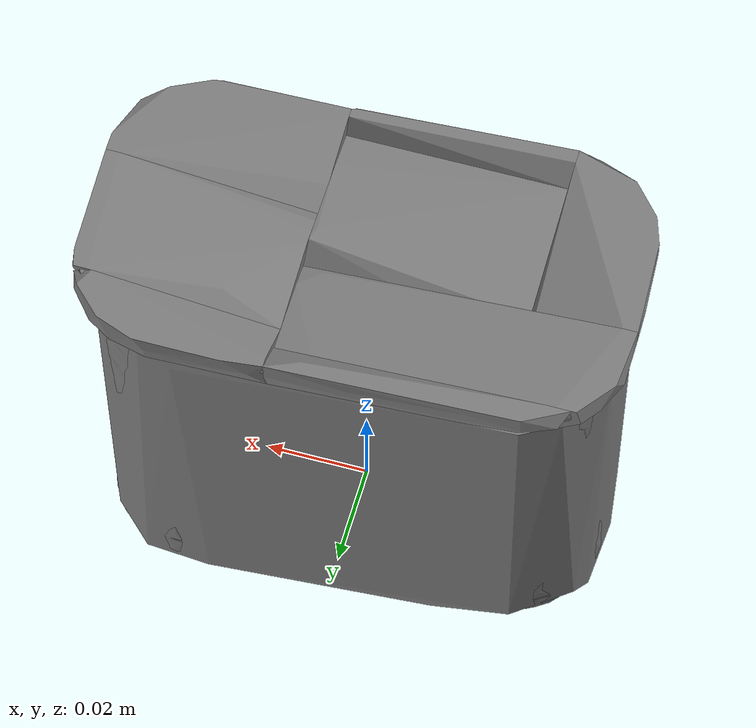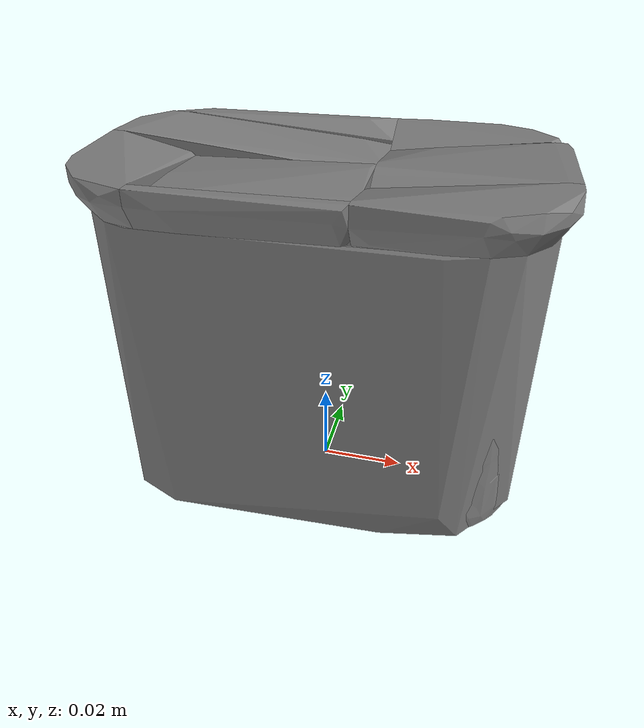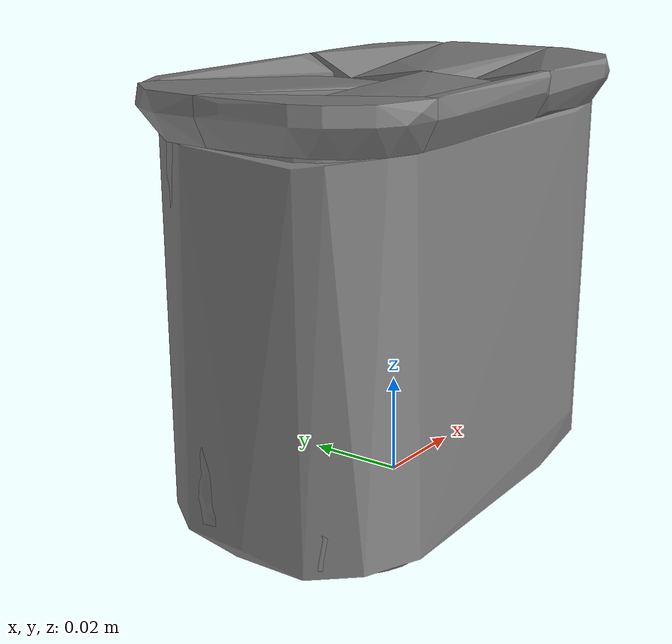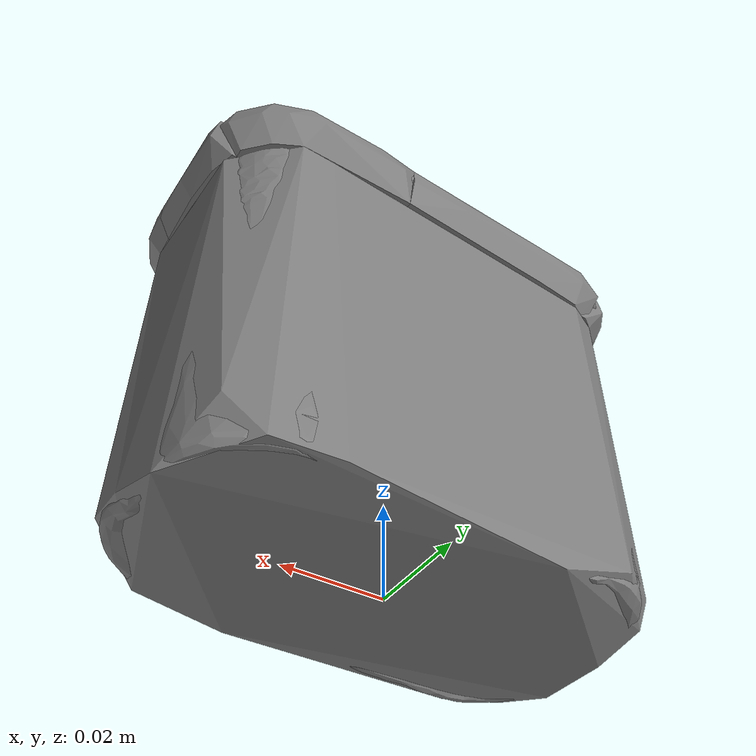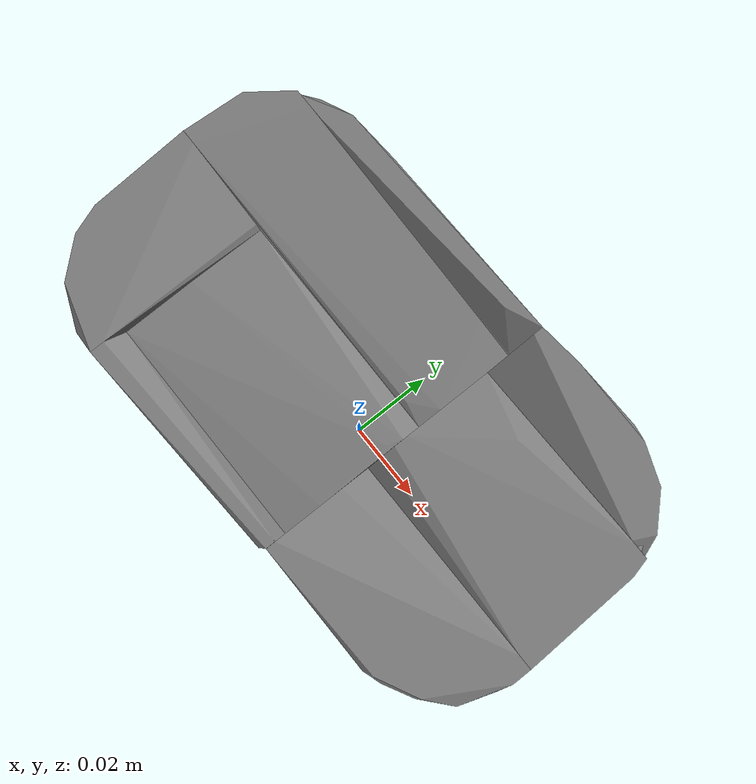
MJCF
<mujoco model="potted_meat_can">
  <asset>
    <mesh file="../../meshes/ycb/potted_meat_can/simple_mesh.stl" name="potted_meat_can_mesh" scale="1 1 1"/>
    <mesh file="../../meshes/ycb/potted_meat_can/potted_meat_can_hull_1.stl" name="potted_meat_can_hull_mesh_1" scale="1 1 1"/>
    <mesh file="../../meshes/ycb/potted_meat_can/potted_meat_can_hull_2.stl" name="potted_meat_can_hull_mesh_2" scale="1 1 1"/>
    <mesh file="../../meshes/ycb/potted_meat_can/potted_meat_can_hull_3.stl" name="potted_meat_can_hull_mesh_3" scale="1 1 1"/>
    <mesh file="../../meshes/ycb/potted_meat_can/potted_meat_can_hull_4.stl" name="potted_meat_can_hull_mesh_4" scale="1 1 1"/>
    <mesh file="../../meshes/ycb/potted_meat_can/potted_meat_can_hull_5.stl" name="potted_meat_can_hull_mesh_5" scale="1 1 1"/>
    <mesh file="../../meshes/ycb/potted_meat_can/potted_meat_can_hull_6.stl" name="potted_meat_can_hull_mesh_6" scale="1 1 1"/>
    <mesh file="../../meshes/ycb/potted_meat_can/potted_meat_can_hull_7.stl" name="potted_meat_can_hull_mesh_7" scale="1 1 1"/>
    <mesh file="../../meshes/ycb/potted_meat_can/potted_meat_can_hull_8.stl" name="potted_meat_can_hull_mesh_8" scale="1 1 1"/>
    <mesh file="../../meshes/ycb/potted_meat_can/potted_meat_can_hull_9.stl" name="potted_meat_can_hull_mesh_9" scale="1 1 1"/>
  </asset>
  <worldbody>
    <body>
      <body name="object">
        <geom pos="0 0 0" mesh="potted_meat_can_mesh" type="mesh" contype="0" conaffinity="0" group="1"/>
        <geom pos="0 0 0" mesh="potted_meat_can_hull_mesh_1" type="mesh" margin="0.001" solimp="0.998 0.998 0.001" solref="0.001 1" density="350" friction="0.95 0.3 0.1" group="0" condim="4"/>
        <geom pos="0 0 0" mesh="potted_meat_can_hull_mesh_2" type="mesh" margin="0.001" solimp="0.998 0.998 0.001" solref="0.001 1" density="350" friction="0.95 0.3 0.1" group="0" condim="4"/>
        <geom pos="0 0 0" mesh="potted_meat_can_hull_mesh_3" type="mesh" margin="0.001" solimp="0.998 0.998 0.001" solref="0.001 1" density="350" friction="0.95 0.3 0.1" group="0" condim="4"/>
        <geom pos="0 0 0" mesh="potted_meat_can_hull_mesh_4" type="mesh" margin="0.001" solimp="0.998 0.998 0.001" solref="0.001 1" density="350" friction="0.95 0.3 0.1" group="0" condim="4"/>
        <geom pos="0 0 0" mesh="potted_meat_can_hull_mesh_5" type="mesh" margin="0.001" solimp="0.998 0.998 0.001" solref="0.001 1" density="350" friction="0.95 0.3 0.1" group="0" condim="4"/>
        <geom pos="0 0 0" mesh="potted_meat_can_hull_mesh_6" type="mesh" margin="0.001" solimp="0.998 0.998 0.001" solref="0.001 1" density="350" friction="0.95 0.3 0.1" group="0" condim="4"/>
        <geom pos="0 0 0" mesh="potted_meat_can_hull_mesh_7" type="mesh" margin="0.001" solimp="0.998 0.998 0.001" solref="0.001 1" density="350" friction="0.95 0.3 0.1" group="0" condim="4"/>
        <geom pos="0 0 0" mesh="potted_meat_can_hull_mesh_8" type="mesh" margin="0.001" solimp="0.998 0.998 0.001" solref="0.001 1" density="350" friction="0.95 0.3 0.1" group="0" condim="4"/>
        <geom pos="0 0 0" mesh="potted_meat_can_hull_mesh_9" type="mesh" margin="0.001" solimp="0.998 0.998 0.001" solref="0.001 1" density="350" friction="0.95 0.3 0.1" group="0" condim="4"/>
      </body>
      <site rgba="0 0 0 0" size="0.005" pos="0 0 -0.001" name="bottom_site"/>
      <site rgba="0 0 0 0" size="0.005" pos="0 0 0.02" name="top_site"/>
      <site rgba="0 0 0 0" size="0.005" pos="0.0375 0.02 0" name="horizontal_radius_site"/>
    </body>
  </worldbody>
</mujoco>
